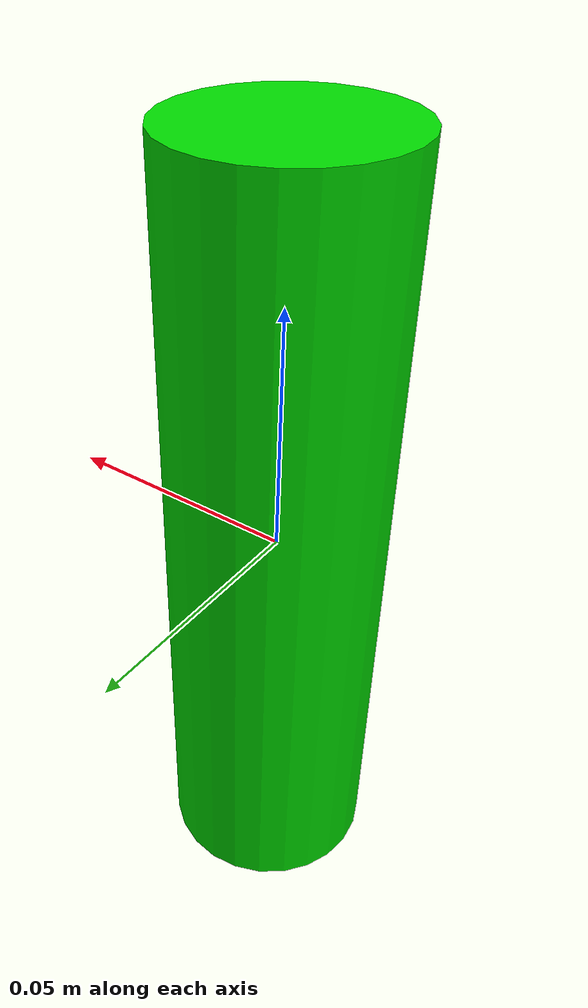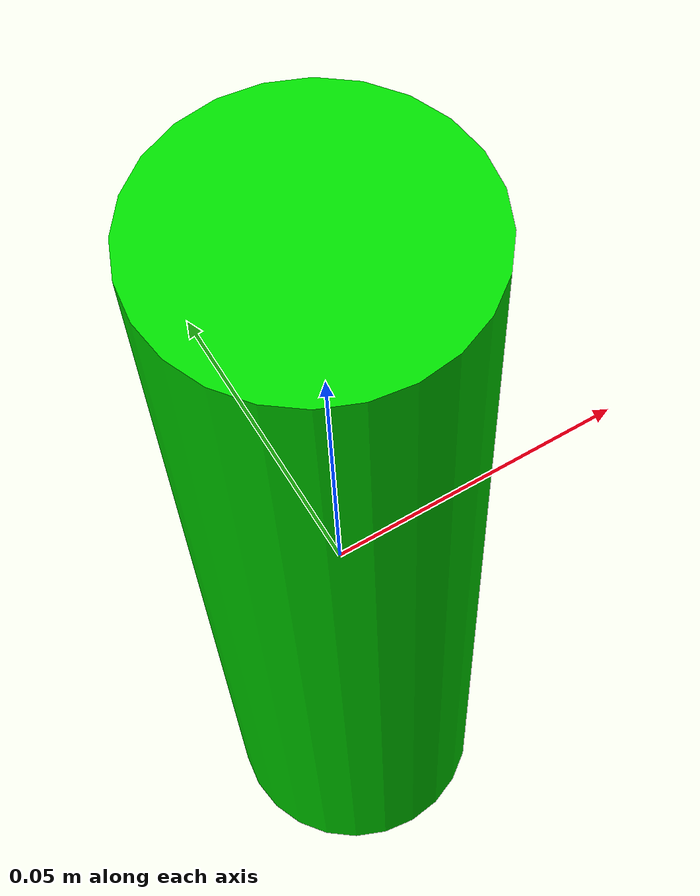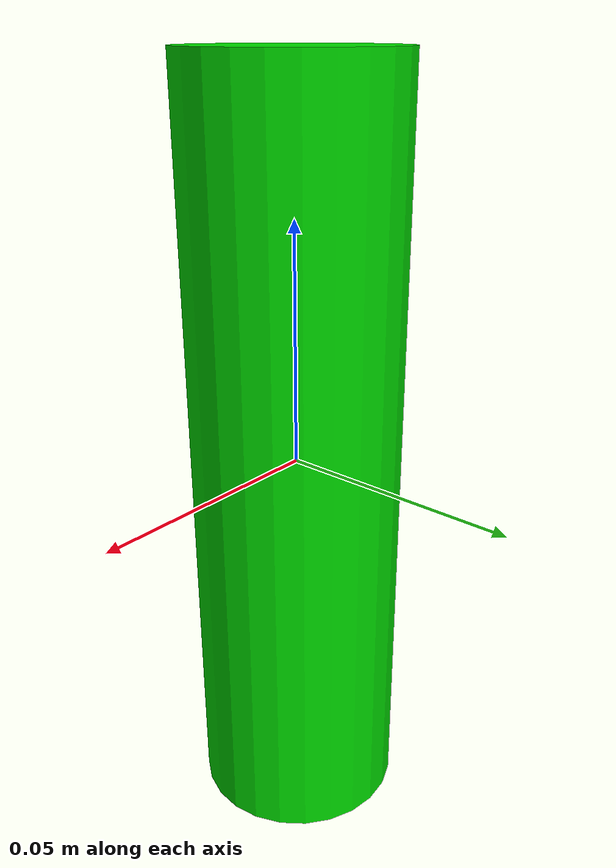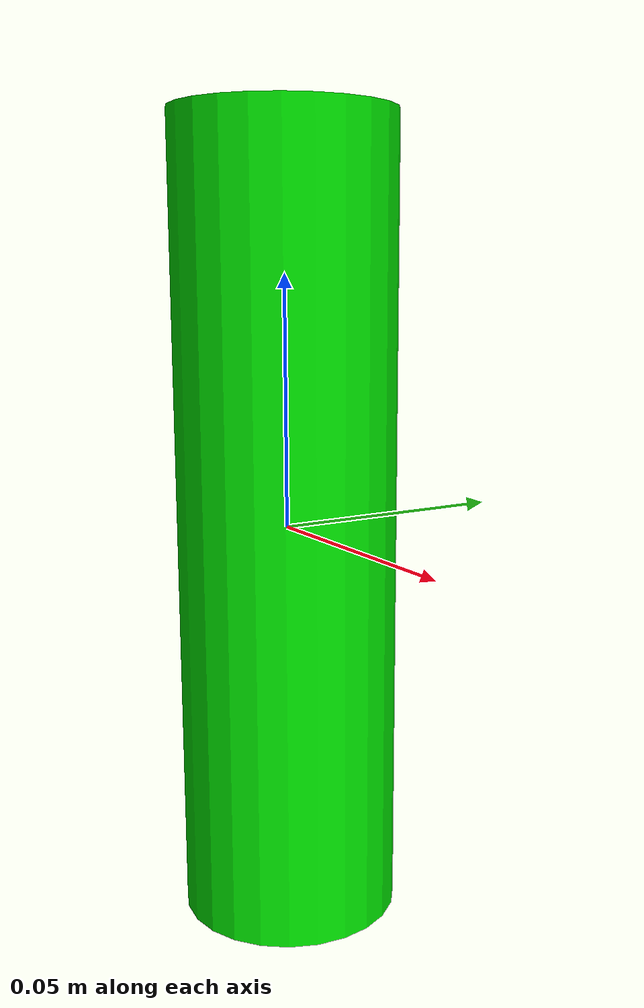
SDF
<?xml version="1.0"?>
<sdf version="1.6">
  <model name="green_cylinder">
    <static>false</static>
    <allow_auto_disable>false</allow_auto_disable>
    <link name="link">
      <!-- Upright tall cylinder for side-grasp demos:
           diameter 4.4cm, height 16.0cm.
           Diameter is kept within the Sawyer electric gripper opening. -->
      <inertial>
        <mass>0.12</mass>
        <inertia>
          <!-- Solid cylinder inertia for m=0.12, r=0.022, h=0.160 -->
          <ixx>0.00027052</ixx>
          <iyy>0.00027052</iyy>
          <izz>0.00002904</izz>
          <ixy>0</ixy>
          <ixz>0</ixz>
          <iyz>0</iyz>
        </inertia>
      </inertial>

      <collision name="collision">
        <geometry>
          <cylinder>
            <radius>0.022</radius>
            <length>0.160</length>
          </cylinder>
        </geometry>
        <surface>
          <friction>
            <ode>
              <mu>1.5</mu>
              <mu2>1.5</mu2>
            </ode>
          </friction>
          <contact>
            <ode>
              <kp>1000000</kp>
              <kd>1</kd>
            </ode>
          </contact>
        </surface>
      </collision>

      <visual name="visual">
        <geometry>
          <cylinder>
            <radius>0.022</radius>
            <length>0.160</length>
          </cylinder>
        </geometry>
        <material>
          <ambient>0 1 0 1</ambient>
          <diffuse>0 0.85 0 1</diffuse>
          <specular>0.05 0.1 0.05 1</specular>
        </material>
      </visual>
    </link>
  </model>
</sdf>
